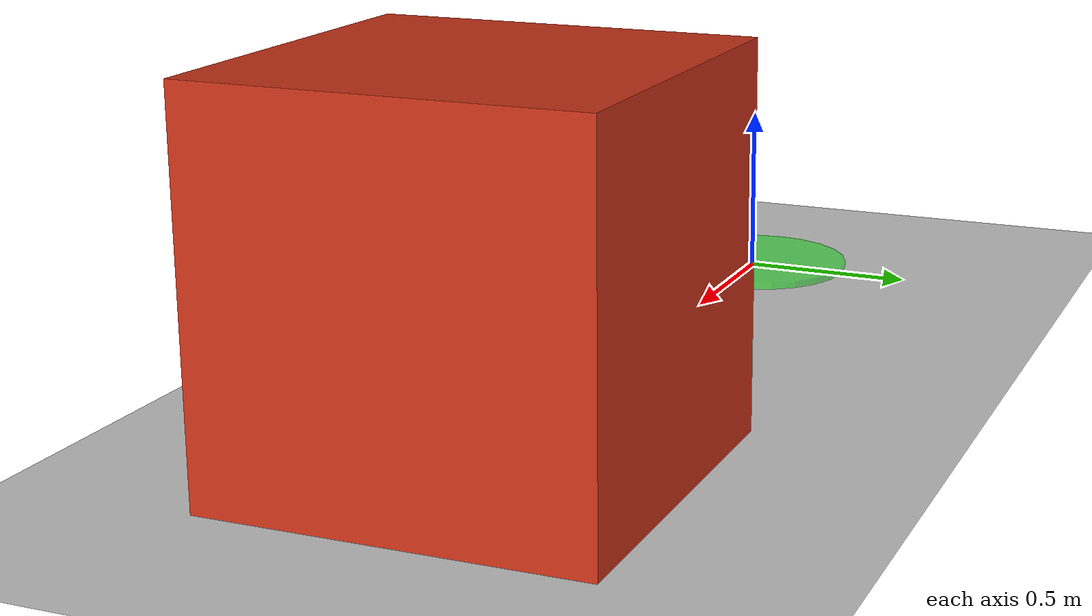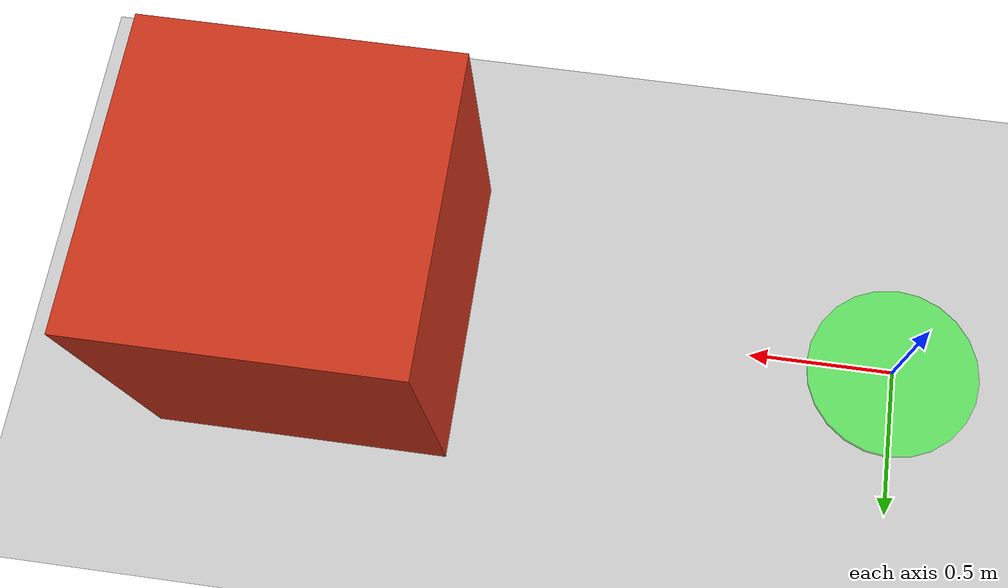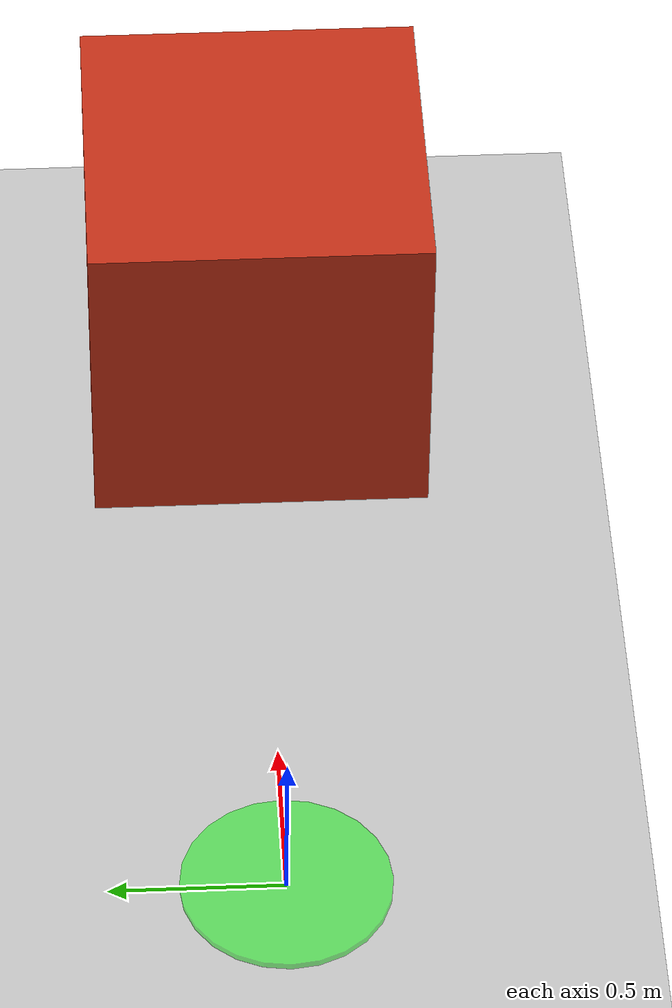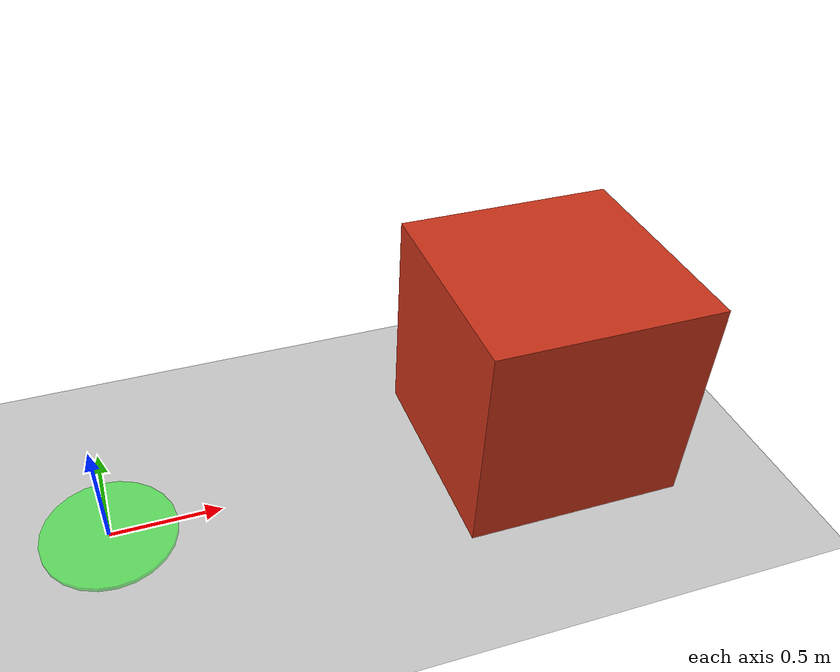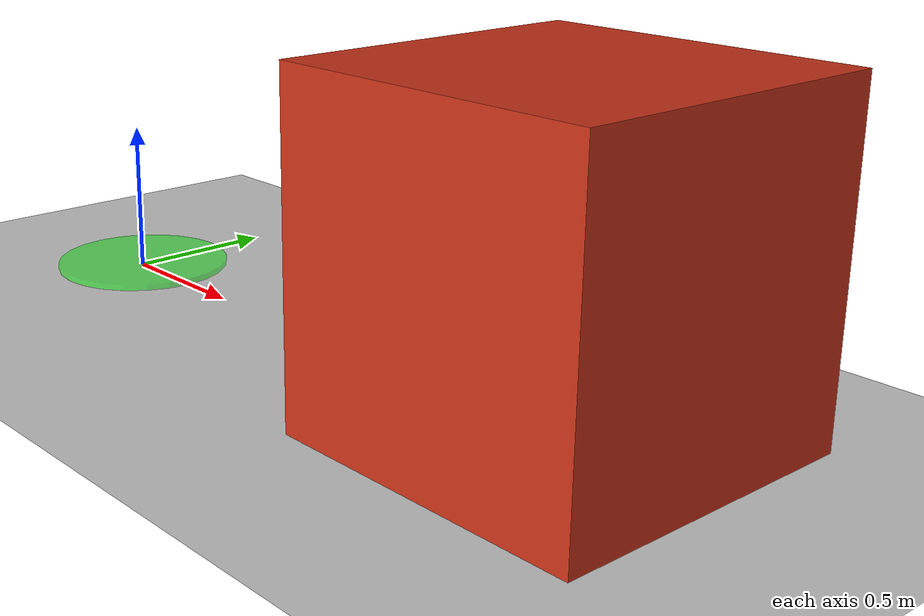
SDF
<?xml version="1.0" ?>
<sdf version="1.7">
  <world name="basic_humanoid_world">
    <!-- Physics configuration optimized for humanoid simulation -->
    <physics type="ode">
      <max_step_size>0.001</max_step_size>
      <real_time_factor>1</real_time_factor>
      <real_time_update_rate>1000</real_time_update_rate>
      <gravity>0 0 -9.8</gravity>
      <ode>
        <solver>
          <type>quick</type>
          <iters>10</iters>
          <sor>1.3</sor>
        </solver>
        <constraints>
          <cfm>0.000001</cfm>
          <erp>0.2</erp>
          <contact_max_correcting_vel>100</contact_max_correcting_vel>
          <contact_surface_layer>0.001</contact_surface_layer>
        </constraints>
      </ode>
    </physics>

    <!-- Scene configuration -->
    <scene>
      <ambient>0.4 0.4 0.4 1</ambient>
      <background>0.7 0.7 0.7 1</background>
      <shadows>true</shadows>
    </scene>

    <!-- Lighting -->
    <include>
      <uri>model://sun</uri>
    </include>

    <!-- Ground plane -->
    <include>
      <uri>model://ground_plane</uri>
    </include>

    <!-- Example obstacle for testing -->
    <model name="test_box">
      <pose>2 0 0.5 0 0 0</pose>
      <static>false</static>
      <link name="link">
        <collision name="collision">
          <geometry>
            <box>
              <size>1 1 1</size>
            </box>
          </geometry>
          <surface>
            <friction>
              <ode>
                <mu>1.0</mu>
                <mu2>1.0</mu2>
              </ode>
            </friction>
          </surface>
        </collision>
        <visual name="visual">
          <geometry>
            <box>
              <size>1 1 1</size>
            </box>
          </geometry>
          <material>
            <ambient>0.8 0.2 0.1 1</ambient>
            <diffuse>0.8 0.2 0.1 1</diffuse>
          </material>
        </visual>
        <inertial>
          <mass>1.0</mass>
          <inertia>
            <ixx>0.166667</ixx>
            <ixy>0</ixy>
            <ixz>0</ixz>
            <iyy>0.166667</iyy>
            <iyz>0</iyz>
            <izz>0.166667</izz>
          </inertia>
        </inertial>
      </link>
    </model>

    <!-- Marker for robot starting position -->
    <model name="start_position">
      <pose>0 0 0.01 0 0 0</pose>
      <static>true</static>
      <link name="link">
        <visual name="visual">
          <geometry>
            <cylinder>
              <radius>0.3</radius>
              <length>0.02</length>
            </cylinder>
          </geometry>
          <material>
            <ambient>0 1 0 0.5</ambient>
            <diffuse>0 1 0 0.5</diffuse>
          </material>
        </visual>
      </link>
    </model>
  </world>
</sdf>
